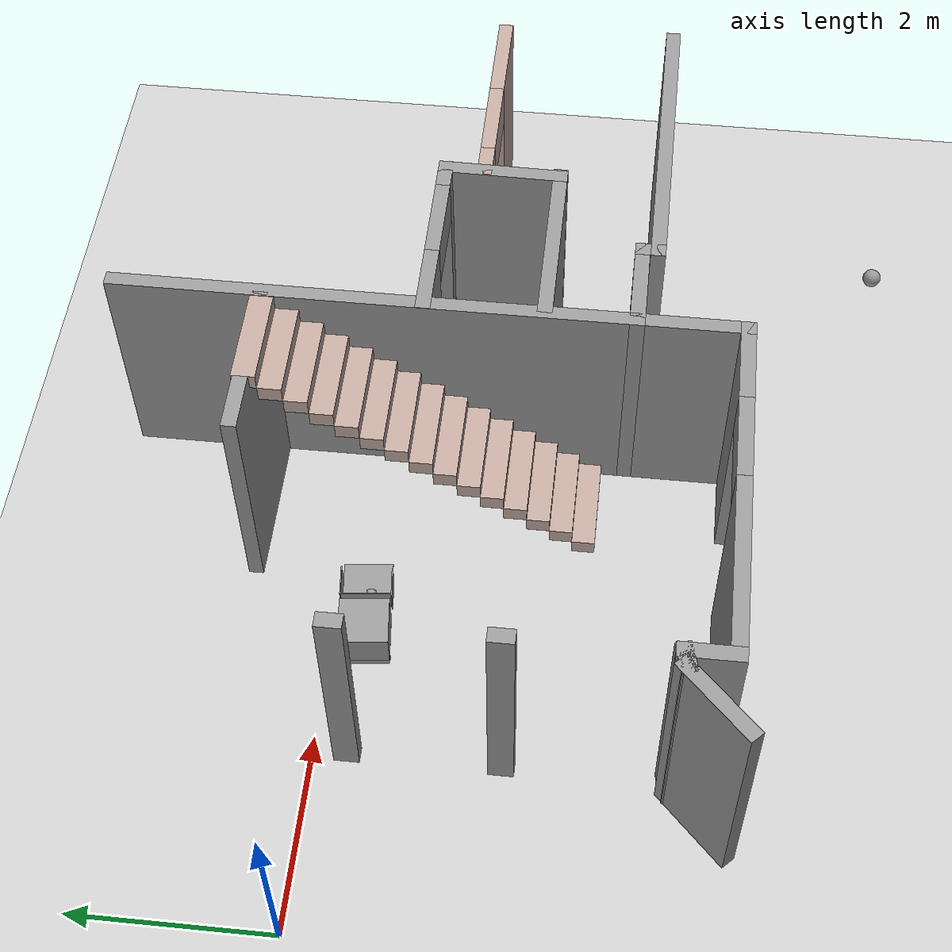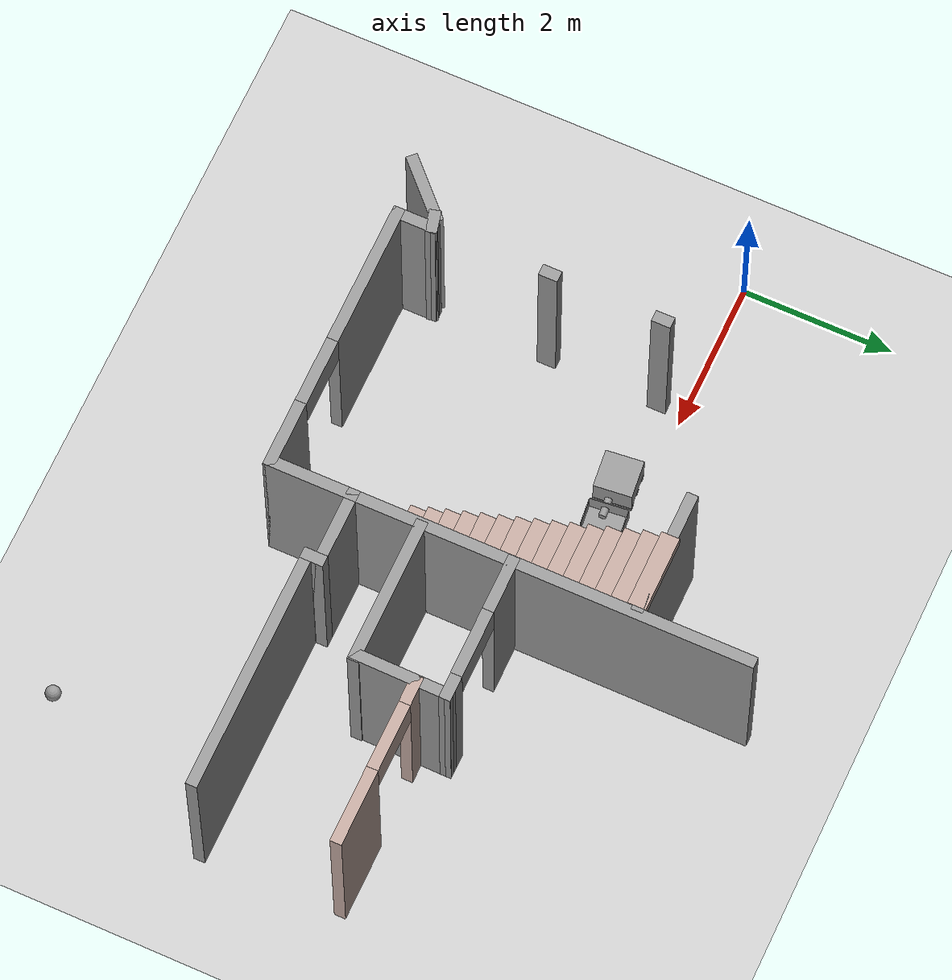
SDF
<sdf version="1.6">
 <world name="default">
  <model name="ground_plane">
   <static>1</static>
   <link name="link">
    <collision name="collision">
     <geometry><plane><normal>0 0 1</normal><size>100 100</size></plane></geometry>
     <surface><friction><ode><mu>100</mu><mu2>50</mu2></ode></friction></surface>
    </collision>
    <visual name="visual">
     <cast_shadows>0</cast_shadows>
     <geometry><plane><normal>0 0 1</normal><size>100 100</size></plane></geometry>
     <material>
      <script><uri>file://media/materials/scripts/gazebo.material</uri><name>Gazebo/Grey</name></script>
     </material>
    </visual>
   </link>
  </model>
  <model name="MDP-Home">
   <pose>0.766606 1.22436 0 0 -0 0</pose>
   <link name="Stairs_1">
    <visual name="Stairs_1_Visual_0">
     <pose>4.13477 -3.63656 0.083333 0 -0 -3.14159</pose>
     <geometry><box><size>1 0.235267 0.166667</size></box></geometry>
     <material>
      <script><uri>file://media/materials/scripts/gazebo.material</uri><name>Gazebo/Grey</name></script>
      <ambient>0.760784 0.662745 0.627451 1</ambient>
     </material>
     <meta><layer>0</layer></meta>
    </visual>
    <collision name="Stairs_1_Collision_0">
     <geometry><box><size>1 0.235267 0.166667</size></box></geometry>
     <pose>4.13477 -3.63656 0.083333 0 -0 -3.14159</pose>
    </collision>
    <visual name="Stairs_1_Visual_1">
     <pose>4.13477 -3.4013 0.25 0 -0 -3.14159</pose>
     <geometry><box><size>1 0.235267 0.166667</size></box></geometry>
     <material>
      <script><uri>file://media/materials/scripts/gazebo.material</uri><name>Gazebo/Grey</name></script>
      <ambient>0.760784 0.662745 0.627451 1</ambient>
     </material>
     <meta><layer>0</layer></meta>
    </visual>
    <collision name="Stairs_1_Collision_1">
     <geometry><box><size>1 0.235267 0.166667</size></box></geometry>
     <pose>4.13477 -3.4013 0.25 0 -0 -3.14159</pose>
    </collision>
    <visual name="Stairs_1_Visual_2">
     <pose>4.13477 -3.16603 0.416667 0 -0 -3.14159</pose>
     <geometry><box><size>1 0.235267 0.166667</size></box></geometry>
     <material>
      <script><uri>file://media/materials/scripts/gazebo.material</uri><name>Gazebo/Grey</name></script>
      <ambient>0.760784 0.662745 0.627451 1</ambient>
     </material>
     <meta><layer>0</layer></meta>
    </visual>
    <collision name="Stairs_1_Collision_2">
     <geometry><box><size>1 0.235267 0.166667</size></box></geometry>
     <pose>4.13477 -3.16603 0.416667 0 -0 -3.14159</pose>
    </collision>
    <visual name="Stairs_1_Visual_3">
     <pose>4.13477 -2.93076 0.583333 0 -0 -3.14159</pose>
     <geometry><box><size>1 0.235267 0.166667</size></box></geometry>
     <material>
      <script><uri>file://media/materials/scripts/gazebo.material</uri><name>Gazebo/Grey</name></script>
      <ambient>0.760784 0.662745 0.627451 1</ambient>
     </material>
     <meta><layer>0</layer></meta>
    </visual>
    <collision name="Stairs_1_Collision_3">
     <geometry><box><size>1 0.235267 0.166667</size></box></geometry>
     <pose>4.13477 -2.93076 0.583333 0 -0 -3.14159</pose>
    </collision>
    <visual name="Stairs_1_Visual_4">
     <pose>4.13477 -2.6955 0.75 0 -0 -3.14159</pose>
     <geometry><box><size>1 0.235267 0.166667</size></box></geometry>
     <material>
      <script><uri>file://media/materials/scripts/gazebo.material</uri><name>Gazebo/Grey</name></script>
      <ambient>0.760784 0.662745 0.627451 1</ambient>
     </material>
     <meta><layer>0</layer></meta>
    </visual>
    <collision name="Stairs_1_Collision_4">
     <geometry><box><size>1 0.235267 0.166667</size></box></geometry>
     <pose>4.13477 -2.6955 0.75 0 -0 -3.14159</pose>
    </collision>
    <visual name="Stairs_1_Visual_5">
     <pose>4.13477 -2.46023 0.916667 0 -0 -3.14159</pose>
     <geometry><box><size>1 0.235267 0.166667</size></box></geometry>
     <material>
      <script><uri>file://media/materials/scripts/gazebo.material</uri><name>Gazebo/Grey</name></script>
      <ambient>0.760784 0.662745 0.627451 1</ambient>
     </material>
     <meta><layer>0</layer></meta>
    </visual>
    <collision name="Stairs_1_Collision_5">
     <geometry><box><size>1 0.235267 0.166667</size></box></geometry>
     <pose>4.13477 -2.46023 0.916667 0 -0 -3.14159</pose>
    </collision>
    <visual name="Stairs_1_Visual_6">
     <pose>4.13477 -2.22496 1.08333 0 -0 -3.14159</pose>
     <geometry><box><size>1 0.235267 0.166667</size></box></geometry>
     <material>
      <script><uri>file://media/materials/scripts/gazebo.material</uri><name>Gazebo/Grey</name></script>
      <ambient>0.760784 0.662745 0.627451 1</ambient>
     </material>
     <meta><layer>0</layer></meta>
    </visual>
    <collision name="Stairs_1_Collision_6">
     <geometry><box><size>1 0.235267 0.166667</size></box></geometry>
     <pose>4.13477 -2.22496 1.08333 0 -0 -3.14159</pose>
    </collision>
    <visual name="Stairs_1_Visual_7">
     <pose>4.13477 -1.9897 1.25 0 -0 -3.14159</pose>
     <geometry><box><size>1 0.235267 0.166667</size></box></geometry>
     <material>
      <script><uri>file://media/materials/scripts/gazebo.material</uri><name>Gazebo/Grey</name></script>
      <ambient>0.760784 0.662745 0.627451 1</ambient>
     </material>
     <meta><layer>0</layer></meta>
    </visual>
    <collision name="Stairs_1_Collision_7">
     <geometry><box><size>1 0.235267 0.166667</size></box></geometry>
     <pose>4.13477 -1.9897 1.25 0 -0 -3.14159</pose>
    </collision>
    <visual name="Stairs_1_Visual_8">
     <pose>4.13477 -1.75443 1.41667 0 -0 -3.14159</pose>
     <geometry><box><size>1 0.235267 0.166667</size></box></geometry>
     <material>
      <script><uri>file://media/materials/scripts/gazebo.material</uri><name>Gazebo/Grey</name></script>
      <ambient>0.760784 0.662745 0.627451 1</ambient>
     </material>
     <meta><layer>0</layer></meta>
    </visual>
    <collision name="Stairs_1_Collision_8">
     <geometry><box><size>1 0.235267 0.166667</size></box></geometry>
     <pose>4.13477 -1.75443 1.41667 0 -0 -3.14159</pose>
    </collision>
    <visual name="Stairs_1_Visual_9">
     <pose>4.13477 -1.51916 1.58333 0 -0 -3.14159</pose>
     <geometry><box><size>1 0.235267 0.166667</size></box></geometry>
     <material>
      <script><uri>file://media/materials/scripts/gazebo.material</uri><name>Gazebo/Grey</name></script>
      <ambient>0.760784 0.662745 0.627451 1</ambient>
     </material>
     <meta><layer>0</layer></meta>
    </visual>
    <collision name="Stairs_1_Collision_9">
     <geometry><box><size>1 0.235267 0.166667</size></box></geometry>
     <pose>4.13477 -1.51916 1.58333 0 -0 -3.14159</pose>
    </collision>
    <visual name="Stairs_1_Visual_10">
     <pose>4.13477 -1.2839 1.75 0 -0 -3.14159</pose>
     <geometry><box><size>1 0.235267 0.166667</size></box></geometry>
     <material>
      <script><uri>file://media/materials/scripts/gazebo.material</uri><name>Gazebo/Grey</name></script>
      <ambient>0.760784 0.662745 0.627451 1</ambient>
     </material>
     <meta><layer>0</layer></meta>
    </visual>
    <collision name="Stairs_1_Collision_10">
     <geometry><box><size>1 0.235267 0.166667</size></box></geometry>
     <pose>4.13477 -1.2839 1.75 0 -0 -3.14159</pose>
    </collision>
    <visual name="Stairs_1_Visual_11">
     <pose>4.13477 -1.04863 1.91667 0 -0 -3.14159</pose>
     <geometry><box><size>1 0.235267 0.166667</size></box></geometry>
     <material>
      <script><uri>file://media/materials/scripts/gazebo.material</uri><name>Gazebo/Grey</name></script>
      <ambient>0.760784 0.662745 0.627451 1</ambient>
     </material>
     <meta><layer>0</layer></meta>
    </visual>
    <collision name="Stairs_1_Collision_11">
     <geometry><box><size>1 0.235267 0.166667</size></box></geometry>
     <pose>4.13477 -1.04863 1.91667 0 -0 -3.14159</pose>
    </collision>
    <visual name="Stairs_1_Visual_12">
     <pose>4.13477 -0.813364 2.08333 0 -0 -3.14159</pose>
     <geometry><box><size>1 0.235267 0.166667</size></box></geometry>
     <material>
      <script><uri>file://media/materials/scripts/gazebo.material</uri><name>Gazebo/Grey</name></script>
      <ambient>0.760784 0.662745 0.627451 1</ambient>
     </material>
     <meta><layer>0</layer></meta>
    </visual>
    <collision name="Stairs_1_Collision_12">
     <geometry><box><size>1 0.235267 0.166667</size></box></geometry>
     <pose>4.13477 -0.813364 2.08333 0 -0 -3.14159</pose>
    </collision>
    <visual name="Stairs_1_Visual_13">
     <pose>4.13477 -0.578097 2.25 0 -0 -3.14159</pose>
     <geometry><box><size>1 0.235267 0.166667</size></box></geometry>
     <material>
      <script><uri>file://media/materials/scripts/gazebo.material</uri><name>Gazebo/Grey</name></script>
      <ambient>0.760784 0.662745 0.627451 1</ambient>
     </material>
     <meta><layer>0</layer></meta>
    </visual>
    <collision name="Stairs_1_Collision_13">
     <geometry><box><size>1 0.235267 0.166667</size></box></geometry>
     <pose>4.13477 -0.578097 2.25 0 -0 -3.14159</pose>
    </collision>
    <visual name="Stairs_1_Visual_14">
     <pose>4.13477 -0.342831 2.41667 0 -0 -3.14159</pose>
     <geometry><box><size>1 0.235267 0.166667</size></box></geometry>
     <material>
      <script><uri>file://media/materials/scripts/gazebo.material</uri><name>Gazebo/Grey</name></script>
      <ambient>0.760784 0.662745 0.627451 1</ambient>
     </material>
     <meta><layer>0</layer></meta>
    </visual>
    <collision name="Stairs_1_Collision_14">
     <geometry><box><size>1 0.235267 0.166667</size></box></geometry>
     <pose>4.13477 -0.342831 2.41667 0 -0 -3.14159</pose>
    </collision>
   </link>
   <link name="Wall_109">
    <collision name="Wall_109_Collision">
     <geometry><box><size>5.3 0.15 2.5</size></box></geometry>
     <pose>0 0 1.25 0 -0 0</pose>
    </collision>
    <visual name="Wall_109_Visual">
     <pose>0 0 1.25 0 -0 0</pose>
     <geometry><box><size>5.3 0.15 2.5</size></box></geometry>
     <material>
      <script><uri>file://media/materials/scripts/gazebo.material</uri><name>Gazebo/Grey</name></script>
      <ambient>1 1 1 1</ambient>
     </material>
     <meta><layer>0</layer></meta>
    </visual>
    <pose>4.71555 -1.42344 0 0 -0 1.5708</pose>
   </link>
   <link name="Wall_111">
    <collision name="Wall_111_Collision">
     <geometry><box><size>1.96718 0.15 2.5</size></box></geometry>
     <pose>0 0 1.25 0 -0 0</pose>
    </collision>
    <visual name="Wall_111_Visual">
     <pose>0 0 1.25 0 -0 0</pose>
     <geometry><box><size>1.96718 0.15 2.5</size></box></geometry>
     <material>
      <script><uri>file://media/materials/scripts/gazebo.material</uri><name>Gazebo/Grey</name></script>
      <ambient>1 1 1 1</ambient>
     </material>
     <meta><layer>0</layer></meta>
    </visual>
    <pose>5.66115 -3.09931 0 0 -0 0</pose>
   </link>
   <link name="Wall_112">
    <collision name="Wall_112_Collision">
     <geometry><box><size>1.33381 0.15 2.5</size></box></geometry>
     <pose>0 0 1.25 0 -0 0</pose>
    </collision>
    <visual name="Wall_112_Visual">
     <pose>0 0 1.25 0 -0 0</pose>
     <geometry><box><size>1.33381 0.15 2.5</size></box></geometry>
     <material>
      <script><uri>file://media/materials/scripts/gazebo.material</uri><name>Gazebo/Grey</name></script>
      <ambient>1 1 1 1</ambient>
     </material>
     <meta><layer>0</layer></meta>
    </visual>
    <pose>6.56113 -2.50746 0 0 -0 1.55716</pose>
   </link>
   <link name="Wall_113">
    <pose>5.64419 -1.91561 0 0 -0 3.14159</pose>
    <visual name="Wall_113_Visual_0">
     <pose>-0.830337 0 1.25 0 -0 0</pose>
     <geometry><box><size>0.339326 0.15 2.5</size></box></geometry>
     <material>
      <script><uri>file://media/materials/scripts/gazebo.material</uri><name>Gazebo/Grey</name></script>
      <ambient>1 1 1 1</ambient>
     </material>
     <meta><layer>0</layer></meta>
    </visual>
    <collision name="Wall_113_Collision_0">
     <geometry><box><size>0.339326 0.15 2.5</size></box></geometry>
     <pose>-0.830337 0 1.25 0 -0 0</pose>
    </collision>
    <visual name="Wall_113_Visual_1">
     <pose>0.619663 0 1.25 0 -0 0</pose>
     <geometry><box><size>0.760674 0.15 2.5</size></box></geometry>
     <material>
      <script><uri>file://media/materials/scripts/gazebo.material</uri><name>Gazebo/Grey</name></script>
      <ambient>1 1 1 1</ambient>
     </material>
     <meta><layer>0</layer></meta>
    </visual>
    <collision name="Wall_113_Collision_1">
     <geometry><box><size>0.760674 0.15 2.5</size></box></geometry>
     <pose>0.619663 0 1.25 0 -0 0</pose>
    </collision>
    <visual name="Wall_113_Visual_2">
     <pose>-0.210674 0 2.25 0 -0 0</pose>
     <geometry><box><size>0.9 0.15 0.5</size></box></geometry>
     <material>
      <script><uri>file://media/materials/scripts/gazebo.material</uri><name>Gazebo/Grey</name></script>
      <ambient>1 1 1 1</ambient>
     </material>
     <meta><layer>0</layer></meta>
    </visual>
    <collision name="Wall_113_Collision_2">
     <geometry><box><size>0.9 0.15 0.5</size></box></geometry>
     <pose>-0.210674 0 2.25 0 -0 0</pose>
    </collision>
   </link>
   <link name="Wall_120">
    <pose>7.65135 -2.31717 0 0 -0 0</pose>
    <visual name="Wall_120_Visual_0">
     <pose>-0.959065 0 1.25 0 -0 0</pose>
     <geometry><box><size>0.38187 0.15 2.5</size></box></geometry>
     <material>
      <script><uri>file://media/materials/scripts/gazebo.material</uri><name>Gazebo/Grey</name></script>
      <ambient>0.760784 0.662745 0.627451 1</ambient>
     </material>
     <meta><layer>0</layer></meta>
    </visual>
    <collision name="Wall_120_Collision_0">
     <geometry><box><size>0.38187 0.15 2.5</size></box></geometry>
     <pose>-0.959065 0 1.25 0 -0 0</pose>
    </collision>
    <visual name="Wall_120_Visual_1">
     <pose>0.640935 0 1.25 0 -0 0</pose>
     <geometry><box><size>1.01813 0.15 2.5</size></box></geometry>
     <material>
      <script><uri>file://media/materials/scripts/gazebo.material</uri><name>Gazebo/Grey</name></script>
      <ambient>0.760784 0.662745 0.627451 1</ambient>
     </material>
     <meta><layer>0</layer></meta>
    </visual>
    <collision name="Wall_120_Collision_1">
     <geometry><box><size>1.01813 0.15 2.5</size></box></geometry>
     <pose>0.640935 0 1.25 0 -0 0</pose>
    </collision>
    <visual name="Wall_120_Visual_2">
     <pose>-0.31813 0 2.25 0 -0 0</pose>
     <geometry><box><size>0.9 0.15 0.5</size></box></geometry>
     <material>
      <script><uri>file://media/materials/scripts/gazebo.material</uri><name>Gazebo/Grey</name></script>
      <ambient>0.760784 0.662745 0.627451 1</ambient>
     </material>
     <meta><layer>0</layer></meta>
    </visual>
    <collision name="Wall_120_Collision_2">
     <geometry><box><size>0.9 0.15 0.5</size></box></geometry>
     <pose>-0.31813 0 2.25 0 -0 0</pose>
    </collision>
   </link>
   <link name="Wall_123">
    <collision name="Wall_123_Collision">
     <geometry><box><size>1.65 0.15 2.5</size></box></geometry>
     <pose>0 0 1.25 0 -0 0</pose>
    </collision>
    <visual name="Wall_123_Visual">
     <pose>0 0 1.25 0 -0 0</pose>
     <geometry><box><size>1.65 0.15 2.5</size></box></geometry>
     <material>
      <script><uri>file://media/materials/scripts/gazebo.material</uri><name>Gazebo/Grey</name></script>
      <ambient>1 1 1 1</ambient>
     </material>
     <meta><layer>0</layer></meta>
    </visual>
    <pose>3.86539 -0.319363 0 0 -0 0</pose>
   </link>
   <link name="Wall_125">
    <collision name="Wall_125_Collision">
     <geometry><box><size>0.25 0.15 2.5</size></box></geometry>
     <pose>0 0 1.25 0 -0 0</pose>
    </collision>
    <visual name="Wall_125_Visual">
     <pose>0 0 1.25 0 -0 0</pose>
     <geometry><box><size>0.25 0.15 2.5</size></box></geometry>
     <material>
      <script><uri>file://media/materials/scripts/gazebo.material</uri><name>Gazebo/Grey</name></script>
      <ambient>1 1 1 1</ambient>
     </material>
     <meta><layer>0</layer></meta>
    </visual>
    <pose>1.08912 -3.0518 0 0 -0 1.5708</pose>
   </link>
   <link name="Wall_127">
    <collision name="Wall_127_Collision">
     <geometry><box><size>0.25 0.15 2.5</size></box></geometry>
     <pose>0 0 1.25 0 -0 0</pose>
    </collision>
    <visual name="Wall_127_Visual">
     <pose>0 0 1.25 0 -0 0</pose>
     <geometry><box><size>0.25 0.15 2.5</size></box></geometry>
     <material>
      <script><uri>file://media/materials/scripts/gazebo.material</uri><name>Gazebo/Grey</name></script>
      <ambient>1 1 1 1</ambient>
     </material>
     <meta><layer>0</layer></meta>
    </visual>
    <pose>1.08912 -1.56596 0 0 -0 1.5708</pose>
   </link>
   <link name="Wall_41">
    <collision name="Wall_41_Collision">
     <geometry><box><size>3.292 0.15 2.5</size></box></geometry>
     <pose>0 0 1.25 0 -0 0</pose>
    </collision>
    <visual name="Wall_41_Visual">
     <pose>0 0 1.25 0 -0 0</pose>
     <geometry><box><size>3.292 0.15 2.5</size></box></geometry>
     <material>
      <script><uri>file://media/materials/scripts/gazebo.material</uri><name>Gazebo/Grey</name></script>
      <ambient>1 1 1 1</ambient>
     </material>
     <meta><layer>0</layer></meta>
    </visual>
    <pose>7.20355 -4.15344 0 0 -0 3.14159</pose>
   </link>
   <link name="Wall_43">
    <collision name="Wall_43_Collision">
     <geometry><box><size>0.305 0.15 2.5</size></box></geometry>
     <pose>0 0 1.25 0 -0 0</pose>
    </collision>
    <visual name="Wall_43_Visual">
     <pose>0 0 1.25 0 -0 0</pose>
     <geometry><box><size>0.305 0.15 2.5</size></box></geometry>
     <material>
      <script><uri>file://media/materials/scripts/gazebo.material</uri><name>Gazebo/Grey</name></script>
      <ambient>1 1 1 1</ambient>
     </material>
     <meta><layer>0</layer></meta>
    </visual>
    <pose>5.63255 -4.07594 0 0 -0 1.5708</pose>
   </link>
   <link name="Wall_46">
    <collision name="Wall_46_Collision">
     <geometry><box><size>1.067 0.15 2.5</size></box></geometry>
     <pose>0 0 1.25 0 -0 0</pose>
    </collision>
    <visual name="Wall_46_Visual">
     <pose>0 0 1.25 0 -0 0</pose>
     <geometry><box><size>1.067 0.15 2.5</size></box></geometry>
     <material>
      <script><uri>file://media/materials/scripts/gazebo.material</uri><name>Gazebo/Grey</name></script>
      <ambient>1 1 1 1</ambient>
     </material>
     <meta><layer>0</layer></meta>
    </visual>
    <pose>5.17405 -3.99844 0 0 -0 3.14159</pose>
   </link>
   <link name="Wall_48">
    <collision name="Wall_48_Collision">
     <geometry><box><size>1.219 0.15 2.5</size></box></geometry>
     <pose>0 0 1.25 0 -0 0</pose>
    </collision>
    <visual name="Wall_48_Visual">
     <pose>0 0 1.25 0 -0 0</pose>
     <geometry><box><size>1.219 0.15 2.5</size></box></geometry>
     <material>
      <script><uri>file://media/materials/scripts/gazebo.material</uri><name>Gazebo/Grey</name></script>
      <ambient>1 1 1 1</ambient>
     </material>
     <meta><layer>0</layer></meta>
    </visual>
    <pose>4.71555 -4.53294 0 0 0 -1.5708</pose>
   </link>
   <link name="Wall_50">
    <pose>2.91605 -5.06744 0 0 -0 3.14159</pose>
    <visual name="Wall_50_Visual_0">
     <pose>-1.41623 0 1.25 0 -0 0</pose>
     <geometry><box><size>0.916536 0.15 2.5</size></box></geometry>
     <material>
      <script><uri>file://media/materials/scripts/gazebo.material</uri><name>Gazebo/Grey</name></script>
      <ambient>1 1 1 1</ambient>
     </material>
     <meta><layer>0</layer></meta>
    </visual>
    <collision name="Wall_50_Collision_0">
     <geometry><box><size>0.916536 0.15 2.5</size></box></geometry>
     <pose>-1.41623 0 1.25 0 -0 0</pose>
    </collision>
    <visual name="Wall_50_Visual_1">
     <pose>0.908268 0 1.25 0 -0 0</pose>
     <geometry><box><size>1.93246 0.15 2.5</size></box></geometry>
     <material>
      <script><uri>file://media/materials/scripts/gazebo.material</uri><name>Gazebo/Grey</name></script>
      <ambient>1 1 1 1</ambient>
     </material>
     <meta><layer>0</layer></meta>
    </visual>
    <collision name="Wall_50_Collision_1">
     <geometry><box><size>1.93246 0.15 2.5</size></box></geometry>
     <pose>0.908268 0 1.25 0 -0 0</pose>
    </collision>
    <visual name="Wall_50_Visual_2">
     <pose>-0.507964 0 2.25 0 -0 0</pose>
     <geometry><box><size>0.9 0.15 0.5</size></box></geometry>
     <material>
      <script><uri>file://media/materials/scripts/gazebo.material</uri><name>Gazebo/Grey</name></script>
      <ambient>1 1 1 1</ambient>
     </material>
     <meta><layer>0</layer></meta>
    </visual>
    <collision name="Wall_50_Collision_2">
     <geometry><box><size>0.9 0.15 0.5</size></box></geometry>
     <pose>-0.507964 0 2.25 0 -0 0</pose>
    </collision>
   </link>
   <link name="Wall_67">
    <collision name="Wall_67_Collision">
     <geometry><box><size>0.61 0.15 2.5</size></box></geometry>
     <pose>0 0 1.25 0 -0 0</pose>
    </collision>
    <visual name="Wall_67_Visual">
     <pose>0 0 1.25 0 -0 0</pose>
     <geometry><box><size>0.61 0.15 2.5</size></box></geometry>
     <material>
      <script><uri>file://media/materials/scripts/gazebo.material</uri><name>Gazebo/Grey</name></script>
      <ambient>1 1 1 1</ambient>
     </material>
     <meta><layer>0</layer></meta>
    </visual>
    <pose>1.11655 -4.83744 0 0 -0 1.5708</pose>
   </link>
   <link name="Wall_69">
    <collision name="Wall_69_Collision">
     <geometry><box><size>0.304601 0.15 2.5</size></box></geometry>
     <pose>0 0 1.25 0 -0 0</pose>
    </collision>
    <visual name="Wall_69_Visual">
     <pose>0 0 1.25 0 -0 0</pose>
     <geometry><box><size>0.304601 0.15 2.5</size></box></geometry>
     <material>
      <script><uri>file://media/materials/scripts/gazebo.material</uri><name>Gazebo/Grey</name></script>
      <ambient>1 1 1 1</ambient>
     </material>
     <meta><layer>0</layer></meta>
    </visual>
    <pose>1.04152 -4.62604 0 0 0 -2.89852</pose>
   </link>
   <link name="Wall_80">
    <collision name="Wall_80_Collision">
     <geometry><box><size>0.947048 0.15 2.5</size></box></geometry>
     <pose>0 0 1.25 0 -0 0</pose>
    </collision>
    <visual name="Wall_80_Visual">
     <pose>0 0 1.25 0 -0 0</pose>
     <geometry><box><size>0.947048 0.15 2.5</size></box></geometry>
     <material>
      <script><uri>file://media/materials/scripts/gazebo.material</uri><name>Gazebo/Grey</name></script>
      <ambient>1 1 1 1</ambient>
     </material>
     <meta><layer>0</layer></meta>
    </visual>
    <pose>0.681588 -4.9047 0 0 -0 0.774307</pose>
   </link>
   <static>1</static>
  </model>
  <model name="Lifter">
   <link name="link_0">
    <pose>-0.270445 0.004778 0.040055 0 -0 0</pose>
    <inertial>
     <mass>1</mass>
     <inertia>
      <ixx>0.166667</ixx>
      <ixy>0</ixy>
      <ixz>0</ixz>
      <iyy>0.166667</iyy>
      <iyz>0</iyz>
      <izz>0.166667</izz>
     </inertia>
    </inertial>
    <visual name="visual">
     <pose>0 0 0.1 0 -0 0</pose>
     <geometry><box><size>0.5 0.5 0.35</size></box></geometry>
     <material>
      <lighting>1</lighting>
      <script><uri>file://media/materials/scripts/gazebo.material</uri><name>Gazebo/Grey</name></script>
      <shader type="pixel"><normal_map>__default__</normal_map></shader>
      <ambient>0.3 0.3 0.3 1</ambient>
      <diffuse>0.7 0.7 0.7 1</diffuse>
      <specular>0.01 0.01 0.01 1</specular>
      <emissive>0 0 0 1</emissive>
     </material>
    </visual>
    <collision name="collision">
     <geometry><box><size>0.5 0.5 0.35</size></box></geometry>
     <surface>
      <friction>
       <ode><mu>1</mu><mu2>1</mu2><fdir1>0 0 0</fdir1><slip1>0</slip1><slip2>0</slip2></ode>
       <torsional>
        <coefficient>1</coefficient>
        <patch_radius>0</patch_radius>
        <surface_radius>0</surface_radius>
        <use_patch_radius>1</use_patch_radius>
        <ode><slip>0</slip></ode>
       </torsional>
      </friction>
      <bounce><restitution_coefficient>0</restitution_coefficient><threshold>1e+06</threshold></bounce>
      <contact>
       <collide_without_contact>0</collide_without_contact>
       <collide_without_contact_bitmask>1</collide_without_contact_bitmask>
       <collide_bitmask>1</collide_bitmask>
       <ode>
        <soft_cfm>0</soft_cfm>
        <soft_erp>0.2</soft_erp>
        <kp>1e+13</kp>
        <kd>1</kd>
        <max_vel>0.01</max_vel>
        <min_depth>0</min_depth>
       </ode>
       <bullet>
        <split_impulse>1</split_impulse>
        <split_impulse_penetration_threshold>-0.01</split_impulse_penetration_threshold>
        <soft_cfm>0</soft_cfm>
        <soft_erp>0.2</soft_erp>
        <kp>1e+13</kp>
        <kd>1</kd>
       </bullet>
      </contact>
     </surface>
    </collision>
   </link>
   <link name="link_1">
    <pose>-0.470445 0.004778 -0.084944 1.57079 -0 0</pose>
    <inertial>
     <mass>1</mass>
     <inertia><ixx>0.145833</ixx><ixy>0</ixy><ixz>0</ixz><iyy>0.145833</iyy><iyz>0</iyz><izz>0.125</izz></inertia>
    </inertial>
    <visual name="visual">
     <geometry><cylinder><radius>0.05</radius><length>0.5</length></cylinder></geometry>
     <material>
      <lighting>1</lighting>
      <script><uri>file://media/materials/scripts/gazebo.material</uri><name>Gazebo/Grey</name></script>
      <shader type="pixel"><normal_map>__default__</normal_map></shader>
      <ambient>0.3 0.3 0.3 1</ambient>
      <diffuse>0.7 0.7 0.7 1</diffuse>
      <specular>0.01 0.01 0.01 1</specular>
      <emissive>0 0 0 1</emissive>
     </material>
    </visual>
    <collision name="collision">
     <geometry><cylinder><radius>0.05</radius><length>0.5</length></cylinder></geometry>
     <surface>
      <friction>
       <ode><mu>1</mu><mu2>1</mu2><fdir1>0 0 0</fdir1><slip1>0</slip1><slip2>0</slip2></ode>
       <torsional>
        <coefficient>1</coefficient>
        <patch_radius>0</patch_radius>
        <surface_radius>0</surface_radius>
        <use_patch_radius>1</use_patch_radius>
        <ode><slip>0</slip></ode>
       </torsional>
      </friction>
      <bounce><restitution_coefficient>0</restitution_coefficient><threshold>1e+06</threshold></bounce>
      <contact>
       <collide_without_contact>0</collide_without_contact>
       <collide_without_contact_bitmask>1</collide_without_contact_bitmask>
       <collide_bitmask>1</collide_bitmask>
       <ode>
        <soft_cfm>0</soft_cfm>
        <soft_erp>0.2</soft_erp>
        <kp>1e+13</kp>
        <kd>1</kd>
        <max_vel>0.01</max_vel>
        <min_depth>0</min_depth>
       </ode>
       <bullet>
        <split_impulse>1</split_impulse>
        <split_impulse_penetration_threshold>-0.01</split_impulse_penetration_threshold>
        <soft_cfm>0</soft_cfm>
        <soft_erp>0.2</soft_erp>
        <kp>1e+13</kp>
        <kd>1</kd>
       </bullet>
      </contact>
     </surface>
    </collision>
   </link>
   <link name="link_1_clone">
    <pose>-0.270445 0.004778 -0.084944 1.57079 -0 0</pose>
    <inertial>
     <mass>1</mass>
     <inertia><ixx>0.145833</ixx><ixy>0</ixy><ixz>0</ixz><iyy>0.145833</iyy><iyz>0</iyz><izz>0.125</izz></inertia>
    </inertial>
    <visual name="visual">
     <geometry><cylinder><radius>0.05</radius><length>0.5</length></cylinder></geometry>
     <material>
      <lighting>1</lighting>
      <script><uri>file://media/materials/scripts/gazebo.material</uri><name>Gazebo/Grey</name></script>
      <shader type="pixel"><normal_map>__default__</normal_map></shader>
      <ambient>0.3 0.3 0.3 1</ambient>
      <diffuse>0.7 0.7 0.7 1</diffuse>
      <specular>0.01 0.01 0.01 1</specular>
      <emissive>0 0 0 1</emissive>
     </material>
    </visual>
    <collision name="collision">
     <geometry><cylinder><radius>0.05</radius><length>0.5</length></cylinder></geometry>
     <surface>
      <friction>
       <ode><mu>1</mu><mu2>1</mu2><fdir1>0 0 0</fdir1><slip1>0</slip1><slip2>0</slip2></ode>
       <torsional>
        <coefficient>1</coefficient>
        <patch_radius>0</patch_radius>
        <surface_radius>0</surface_radius>
        <use_patch_radius>1</use_patch_radius>
        <ode><slip>0</slip></ode>
       </torsional>
      </friction>
      <bounce><restitution_coefficient>0</restitution_coefficient><threshold>1e+06</threshold></bounce>
      <contact>
       <collide_without_contact>0</collide_without_contact>
       <collide_without_contact_bitmask>1</collide_without_contact_bitmask>
       <collide_bitmask>1</collide_bitmask>
       <ode>
        <soft_cfm>0</soft_cfm>
        <soft_erp>0.2</soft_erp>
        <kp>1e+13</kp>
        <kd>1</kd>
        <max_vel>0.01</max_vel>
        <min_depth>0</min_depth>
       </ode>
       <bullet>
        <split_impulse>1</split_impulse>
        <split_impulse_penetration_threshold>-0.01</split_impulse_penetration_threshold>
        <soft_cfm>0</soft_cfm>
        <soft_erp>0.2</soft_erp>
        <kp>1e+13</kp>
        <kd>1</kd>
       </bullet>
      </contact>
     </surface>
    </collision>
   </link>
   <link name="link_1_clone_1">
    <pose>-0.070445 0.004778 -0.084944 1.57079 -0 0</pose>
    <inertial>
     <mass>1</mass>
     <inertia><ixx>0.145833</ixx><ixy>0</ixy><ixz>0</ixz><iyy>0.145833</iyy><iyz>0</iyz><izz>0.125</izz></inertia>
    </inertial>
    <visual name="visual">
     <geometry><cylinder><radius>0.05</radius><length>0.5</length></cylinder></geometry>
     <material>
      <lighting>1</lighting>
      <script><uri>file://media/materials/scripts/gazebo.material</uri><name>Gazebo/Grey</name></script>
      <shader type="pixel"><normal_map>__default__</normal_map></shader>
      <ambient>0.3 0.3 0.3 1</ambient>
      <diffuse>0.7 0.7 0.7 1</diffuse>
      <specular>0.01 0.01 0.01 1</specular>
      <emissive>0 0 0 1</emissive>
     </material>
    </visual>
    <collision name="collision">
     <geometry><cylinder><radius>0.05</radius><length>0.5</length></cylinder></geometry>
     <surface>
      <friction>
       <ode><mu>1</mu><mu2>1</mu2><fdir1>0 0 0</fdir1><slip1>0</slip1><slip2>0</slip2></ode>
       <torsional>
        <coefficient>1</coefficient>
        <patch_radius>0</patch_radius>
        <surface_radius>0</surface_radius>
        <use_patch_radius>1</use_patch_radius>
        <ode><slip>0</slip></ode>
       </torsional>
      </friction>
      <bounce><restitution_coefficient>0</restitution_coefficient><threshold>1e+06</threshold></bounce>
      <contact>
       <collide_without_contact>0</collide_without_contact>
       <collide_without_contact_bitmask>1</collide_without_contact_bitmask>
       <collide_bitmask>1</collide_bitmask>
       <ode>
        <soft_cfm>0</soft_cfm>
        <soft_erp>0.2</soft_erp>
        <kp>1e+13</kp>
        <kd>1</kd>
        <max_vel>0.01</max_vel>
        <min_depth>0</min_depth>
       </ode>
       <bullet>
        <split_impulse>1</split_impulse>
        <split_impulse_penetration_threshold>-0.01</split_impulse_penetration_threshold>
        <soft_cfm>0</soft_cfm>
        <soft_erp>0.2</soft_erp>
        <kp>1e+13</kp>
        <kd>1</kd>
       </bullet>
      </contact>
     </surface>
    </collision>
   </link>
   <link name="link_5">
    <pose>0.104558 0.004778 0.082555 0 -0 0</pose>
    <inertial>
     <mass>1</mass>
     <inertia>
      <ixx>0.166667</ixx>
      <ixy>0</ixy>
      <ixz>0</ixz>
      <iyy>0.166667</iyy>
      <iyz>0</iyz>
      <izz>0.166667</izz>
     </inertia>
    </inertial>
    <visual name="visual">
     <geometry><box><size>0.01 0.5 0.25</size></box></geometry>
     <material>
      <lighting>1</lighting>
      <script><uri>file://media/materials/scripts/gazebo.material</uri><name>Gazebo/Grey</name></script>
      <shader type="pixel"><normal_map>__default__</normal_map></shader>
      <ambient>0.3 0.3 0.3 1</ambient>
      <diffuse>0.7 0.7 0.7 1</diffuse>
      <specular>0.01 0.01 0.01 1</specular>
      <emissive>0 0 0 1</emissive>
     </material>
    </visual>
    <collision name="collision">
     <geometry><box><size>0.01 0.5 0.25</size></box></geometry>
     <surface>
      <friction>
       <ode><mu>1</mu><mu2>1</mu2><fdir1>0 0 0</fdir1><slip1>0</slip1><slip2>0</slip2></ode>
       <torsional>
        <coefficient>1</coefficient>
        <patch_radius>0</patch_radius>
        <surface_radius>0</surface_radius>
        <use_patch_radius>1</use_patch_radius>
        <ode><slip>0</slip></ode>
       </torsional>
      </friction>
      <bounce><restitution_coefficient>0</restitution_coefficient><threshold>1e+06</threshold></bounce>
      <contact>
       <collide_without_contact>0</collide_without_contact>
       <collide_without_contact_bitmask>1</collide_without_contact_bitmask>
       <collide_bitmask>1</collide_bitmask>
       <ode>
        <soft_cfm>0</soft_cfm>
        <soft_erp>0.2</soft_erp>
        <kp>1e+13</kp>
        <kd>1</kd>
        <max_vel>0.01</max_vel>
        <min_depth>0</min_depth>
       </ode>
       <bullet>
        <split_impulse>1</split_impulse>
        <split_impulse_penetration_threshold>-0.01</split_impulse_penetration_threshold>
        <soft_cfm>0</soft_cfm>
        <soft_erp>0.2</soft_erp>
        <kp>1e+13</kp>
        <kd>1</kd>
       </bullet>
      </contact>
     </surface>
    </collision>
   </link>
   <link name="link_6">
    <pose>0.347558 0.004778 -0.035445 0 -0 0</pose>
    <inertial>
     <mass>1</mass>
     <inertia>
      <ixx>0.166667</ixx>
      <ixy>0</ixy>
      <ixz>0</ixz>
      <iyy>0.166667</iyy>
      <iyz>0</iyz>
      <izz>0.166667</izz>
     </inertia>
    </inertial>
    <visual name="visual">
     <geometry><box><size>0.5 0.5 0.01</size></box></geometry>
     <material>
      <lighting>1</lighting>
      <script><uri>file://media/materials/scripts/gazebo.material</uri><name>Gazebo/Grey</name></script>
      <shader type="pixel"><normal_map>__default__</normal_map></shader>
      <ambient>0.3 0.3 0.3 1</ambient>
      <diffuse>0.7 0.7 0.7 1</diffuse>
      <specular>0.01 0.01 0.01 1</specular>
      <emissive>0 0 0 1</emissive>
     </material>
    </visual>
    <collision name="collision">
     <geometry><box><size>0.5 0.5 0.01</size></box></geometry>
     <surface>
      <friction>
       <ode><mu>1</mu><mu2>1</mu2><fdir1>0 0 0</fdir1><slip1>0</slip1><slip2>0</slip2></ode>
       <torsional>
        <coefficient>1</coefficient>
        <patch_radius>0</patch_radius>
        <surface_radius>0</surface_radius>
        <use_patch_radius>1</use_patch_radius>
        <ode><slip>0</slip></ode>
       </torsional>
      </friction>
      <bounce><restitution_coefficient>0</restitution_coefficient><threshold>1e+06</threshold></bounce>
      <contact>
       <collide_without_contact>0</collide_without_contact>
       <collide_without_contact_bitmask>1</collide_without_contact_bitmask>
       <collide_bitmask>1</collide_bitmask>
       <ode>
        <soft_cfm>0</soft_cfm>
        <soft_erp>0.2</soft_erp>
        <kp>1e+13</kp>
        <kd>1</kd>
        <max_vel>0.01</max_vel>
        <min_depth>0</min_depth>
       </ode>
       <bullet>
        <split_impulse>1</split_impulse>
        <split_impulse_penetration_threshold>-0.01</split_impulse_penetration_threshold>
        <soft_cfm>0</soft_cfm>
        <soft_erp>0.2</soft_erp>
        <kp>1e+13</kp>
        <kd>1</kd>
       </bullet>
      </contact>
     </surface>
    </collision>
   </link>
   <link name="link_7">
    <pose>0.262558 0.261778 0.082555 0 -0 0</pose>
    <inertial>
     <mass>1</mass>
     <inertia>
      <ixx>0.166667</ixx>
      <ixy>0</ixy>
      <ixz>0</ixz>
      <iyy>0.166667</iyy>
      <iyz>0</iyz>
      <izz>0.166667</izz>
     </inertia>
    </inertial>
    <visual name="visual">
     <geometry><box><size>0.33 0.01 0.25</size></box></geometry>
     <material>
      <lighting>1</lighting>
      <script><uri>file://media/materials/scripts/gazebo.material</uri><name>Gazebo/Grey</name></script>
      <shader type="pixel"><normal_map>__default__</normal_map></shader>
      <ambient>0.3 0.3 0.3 1</ambient>
      <diffuse>0.7 0.7 0.7 1</diffuse>
      <specular>0.01 0.01 0.01 1</specular>
      <emissive>0 0 0 1</emissive>
     </material>
    </visual>
    <collision name="collision">
     <geometry><box><size>0.33 0.01 0.25</size></box></geometry>
     <surface>
      <friction>
       <ode><mu>1</mu><mu2>1</mu2><fdir1>0 0 0</fdir1><slip1>0</slip1><slip2>0</slip2></ode>
       <torsional>
        <coefficient>1</coefficient>
        <patch_radius>0</patch_radius>
        <surface_radius>0</surface_radius>
        <use_patch_radius>1</use_patch_radius>
        <ode><slip>0</slip></ode>
       </torsional>
      </friction>
      <bounce><restitution_coefficient>0</restitution_coefficient><threshold>1e+06</threshold></bounce>
      <contact>
       <collide_without_contact>0</collide_without_contact>
       <collide_without_contact_bitmask>1</collide_without_contact_bitmask>
       <collide_bitmask>1</collide_bitmask>
       <ode>
        <soft_cfm>0</soft_cfm>
        <soft_erp>0.2</soft_erp>
        <kp>1e+13</kp>
        <kd>1</kd>
        <max_vel>0.01</max_vel>
        <min_depth>0</min_depth>
       </ode>
       <bullet>
        <split_impulse>1</split_impulse>
        <split_impulse_penetration_threshold>-0.01</split_impulse_penetration_threshold>
        <soft_cfm>0</soft_cfm>
        <soft_erp>0.2</soft_erp>
        <kp>1e+13</kp>
        <kd>1</kd>
       </bullet>
      </contact>
     </surface>
    </collision>
   </link>
   <link name="link_7_clone">
    <pose>0.262558 -0.250222 0.040055 0 -0 0</pose>
    <inertial>
     <mass>1</mass>
     <inertia>
      <ixx>0.166667</ixx>
      <ixy>0</ixy>
      <ixz>0</ixz>
      <iyy>0.166667</iyy>
      <iyz>0</iyz>
      <izz>0.166667</izz>
     </inertia>
    </inertial>
    <visual name="visual">
     <geometry><box><size>0.33 0.01 0.25</size></box></geometry>
     <material>
      <lighting>1</lighting>
      <script><uri>file://media/materials/scripts/gazebo.material</uri><name>Gazebo/Grey</name></script>
      <shader type="pixel"><normal_map>__default__</normal_map></shader>
      <ambient>0.3 0.3 0.3 1</ambient>
      <diffuse>0.7 0.7 0.7 1</diffuse>
      <specular>0.01 0.01 0.01 1</specular>
      <emissive>0 0 0 1</emissive>
     </material>
    </visual>
    <collision name="collision">
     <geometry><box><size>0.33 0.01 0.25</size></box></geometry>
     <surface>
      <friction>
       <ode><mu>1</mu><mu2>1</mu2><fdir1>0 0 0</fdir1><slip1>0</slip1><slip2>0</slip2></ode>
       <torsional>
        <coefficient>1</coefficient>
        <patch_radius>0</patch_radius>
        <surface_radius>0</surface_radius>
        <use_patch_radius>1</use_patch_radius>
        <ode><slip>0</slip></ode>
       </torsional>
      </friction>
      <bounce><restitution_coefficient>0</restitution_coefficient><threshold>1e+06</threshold></bounce>
      <contact>
       <collide_without_contact>0</collide_without_contact>
       <collide_without_contact_bitmask>1</collide_without_contact_bitmask>
       <collide_bitmask>1</collide_bitmask>
       <ode>
        <soft_cfm>0</soft_cfm>
        <soft_erp>0.2</soft_erp>
        <kp>1e+13</kp>
        <kd>1</kd>
        <max_vel>0.01</max_vel>
        <min_depth>0</min_depth>
       </ode>
       <bullet>
        <split_impulse>1</split_impulse>
        <split_impulse_penetration_threshold>-0.01</split_impulse_penetration_threshold>
        <soft_cfm>0</soft_cfm>
        <soft_erp>0.2</soft_erp>
        <kp>1e+13</kp>
        <kd>1</kd>
       </bullet>
      </contact>
     </surface>
    </collision>
   </link>
   <link name="link_8">
    <pose>0.104556 -0.040222 0.045055 1.57079 -0 1.57079</pose>
    <inertial>
     <mass>1</mass>
     <inertia><ixx>0.145833</ixx><ixy>0</ixy><ixz>0</ixz><iyy>0.145833</iyy><iyz>0</iyz><izz>0.125</izz></inertia>
    </inertial>
    <visual name="visual">
     <geometry><cylinder><radius>0.05</radius><length>0.25</length></cylinder></geometry>
     <material>
      <lighting>1</lighting>
      <script><uri>file://media/materials/scripts/gazebo.material</uri><name>Gazebo/Grey</name></script>
      <shader type="pixel"><normal_map>__default__</normal_map></shader>
      <ambient>0.3 0.3 0.3 1</ambient>
      <diffuse>0.7 0.7 0.7 1</diffuse>
      <specular>0.01 0.01 0.01 1</specular>
      <emissive>0 0 0 1</emissive>
     </material>
    </visual>
    <collision name="collision">
     <geometry><cylinder><radius>0.05</radius><length>0.25</length></cylinder></geometry>
     <surface>
      <friction>
       <ode><mu>1</mu><mu2>1</mu2><fdir1>0 0 0</fdir1><slip1>0</slip1><slip2>0</slip2></ode>
       <torsional>
        <coefficient>1</coefficient>
        <patch_radius>0</patch_radius>
        <surface_radius>0</surface_radius>
        <use_patch_radius>1</use_patch_radius>
        <ode><slip>0</slip></ode>
       </torsional>
      </friction>
      <bounce><restitution_coefficient>0</restitution_coefficient><threshold>1e+06</threshold></bounce>
      <contact>
       <collide_without_contact>0</collide_without_contact>
       <collide_without_contact_bitmask>1</collide_without_contact_bitmask>
       <collide_bitmask>1</collide_bitmask>
       <ode>
        <soft_cfm>0</soft_cfm>
        <soft_erp>0.2</soft_erp>
        <kp>1e+13</kp>
        <kd>1</kd>
        <max_vel>0.01</max_vel>
        <min_depth>0</min_depth>
       </ode>
       <bullet>
        <split_impulse>1</split_impulse>
        <split_impulse_penetration_threshold>-0.01</split_impulse_penetration_threshold>
        <soft_cfm>0</soft_cfm>
        <soft_erp>0.2</soft_erp>
        <kp>1e+13</kp>
        <kd>1</kd>
       </bullet>
      </contact>
     </surface>
    </collision>
   </link>
   <joint name="link_0_JOINT_0" type="revolute">
    <parent>link_0</parent>
    <child>link_1</child>
    <axis>
     <xyz>1 0 0</xyz>
     <use_parent_model_frame>0</use_parent_model_frame>
     <limit>
      <lower>-1.79769e+308</lower>
      <upper>1.79769e+308</upper>
      <effort>-1</effort>
      <velocity>-1</velocity>
     </limit>
     <dynamics>
      <spring_reference>0</spring_reference>
      <spring_stiffness>0</spring_stiffness>
      <damping>0</damping>
     </dynamics>
    </axis>
    <physics>
     <ode><limit><cfm>0</cfm><erp>0.2</erp></limit><suspension><cfm>0</cfm><erp>0.2</erp></suspension></ode>
    </physics>
   </joint>
   <joint name="link_0_JOINT_10" type="revolute">
    <parent>link_0</parent>
    <child>link_8</child>
    <axis>
     <xyz>1 0 0</xyz>
     <use_parent_model_frame>0</use_parent_model_frame>
     <limit>
      <lower>-1.79769e+308</lower>
      <upper>1.79769e+308</upper>
      <effort>-1</effort>
      <velocity>-1</velocity>
     </limit>
     <dynamics>
      <spring_reference>0</spring_reference>
      <spring_stiffness>0</spring_stiffness>
      <damping>0</damping>
     </dynamics>
    </axis>
    <physics>
     <ode><limit><cfm>0</cfm><erp>0.2</erp></limit><suspension><cfm>0</cfm><erp>0.2</erp></suspension></ode>
    </physics>
   </joint>
   <joint name="link_0_JOINT_2" type="revolute">
    <parent>link_0</parent>
    <child>link_1_clone</child>
    <axis>
     <xyz>1 0 0</xyz>
     <use_parent_model_frame>0</use_parent_model_frame>
     <limit>
      <lower>-1.79769e+308</lower>
      <upper>1.79769e+308</upper>
      <effort>-1</effort>
      <velocity>-1</velocity>
     </limit>
     <dynamics>
      <spring_reference>0</spring_reference>
      <spring_stiffness>0</spring_stiffness>
      <damping>0</damping>
     </dynamics>
    </axis>
    <physics>
     <ode><limit><cfm>0</cfm><erp>0.2</erp></limit><suspension><cfm>0</cfm><erp>0.2</erp></suspension></ode>
    </physics>
   </joint>
   <joint name="link_0_JOINT_3" type="revolute">
    <parent>link_0</parent>
    <child>link_1_clone_1</child>
    <axis>
     <xyz>1 0 0</xyz>
     <use_parent_model_frame>0</use_parent_model_frame>
     <limit>
      <lower>-1.79769e+308</lower>
      <upper>1.79769e+308</upper>
      <effort>-1</effort>
      <velocity>-1</velocity>
     </limit>
     <dynamics>
      <spring_reference>0</spring_reference>
      <spring_stiffness>0</spring_stiffness>
      <damping>0</damping>
     </dynamics>
    </axis>
    <physics>
     <ode><limit><cfm>0</cfm><erp>0.2</erp></limit><suspension><cfm>0</cfm><erp>0.2</erp></suspension></ode>
    </physics>
   </joint>
   <joint name="link_5_JOINT_13" type="revolute">
    <parent>link_5</parent>
    <child>link_6</child>
    <axis>
     <xyz>0 1 0</xyz>
     <use_parent_model_frame>0</use_parent_model_frame>
     <limit>
      <lower>-1.79769e+308</lower>
      <upper>1.79769e+308</upper>
      <effort>-1</effort>
      <velocity>-1</velocity>
     </limit>
     <dynamics>
      <spring_reference>0</spring_reference>
      <spring_stiffness>0</spring_stiffness>
      <damping>0</damping>
     </dynamics>
    </axis>
    <physics>
     <ode><limit><cfm>0</cfm><erp>0.2</erp></limit><suspension><cfm>0</cfm><erp>0.2</erp></suspension></ode>
    </physics>
   </joint>
   <joint name="link_5_JOINT_15" type="revolute">
    <parent>link_5</parent>
    <child>link_7</child>
    <axis>
     <xyz>1 0 0</xyz>
     <use_parent_model_frame>0</use_parent_model_frame>
     <limit>
      <lower>-1.79769e+308</lower>
      <upper>1.79769e+308</upper>
      <effort>-1</effort>
      <velocity>-1</velocity>
     </limit>
     <dynamics>
      <spring_reference>0</spring_reference>
      <spring_stiffness>0</spring_stiffness>
      <damping>0</damping>
     </dynamics>
    </axis>
    <physics>
     <ode><limit><cfm>0</cfm><erp>0.2</erp></limit><suspension><cfm>0</cfm><erp>0.2</erp></suspension></ode>
    </physics>
   </joint>
   <joint name="link_5_JOINT_16" type="revolute">
    <parent>link_5</parent>
    <child>link_7_clone</child>
    <axis>
     <xyz>0 1 0</xyz>
     <use_parent_model_frame>0</use_parent_model_frame>
     <limit>
      <lower>-1.79769e+308</lower>
      <upper>1.79769e+308</upper>
      <effort>-1</effort>
      <velocity>-1</velocity>
     </limit>
     <dynamics>
      <spring_reference>0</spring_reference>
      <spring_stiffness>0</spring_stiffness>
      <damping>0</damping>
     </dynamics>
    </axis>
    <physics>
     <ode><limit><cfm>0</cfm><erp>0.2</erp></limit><suspension><cfm>0</cfm><erp>0.2</erp></suspension></ode>
    </physics>
   </joint>
   <joint name="link_8_JOINT_12" type="revolute">
    <parent>link_8</parent>
    <child>link_5</child>
    <axis>
     <xyz>0 1 0</xyz>
     <use_parent_model_frame>0</use_parent_model_frame>
     <limit>
      <lower>-1.79769e+308</lower>
      <upper>1.79769e+308</upper>
      <effort>-1</effort>
      <velocity>-1</velocity>
     </limit>
     <dynamics>
      <spring_reference>0</spring_reference>
      <spring_stiffness>0</spring_stiffness>
      <damping>0</damping>
     </dynamics>
    </axis>
    <physics>
     <ode><limit><cfm>0</cfm><erp>0.2</erp></limit><suspension><cfm>0</cfm><erp>0.2</erp></suspension></ode>
    </physics>
   </joint>
   <static>0</static>
   <pose>3.35594 -0.314161 0.134946 -3e-06 7e-06 0.102898</pose>
  </model>
  <model name="my_ball">
   <link name="link_0">
    <inertial>
     <mass>1</mass>
     <inertia><ixx>0.1</ixx><ixy>0</ixy><ixz>0</ixz><iyy>0.1</iyy><iyz>0</iyz><izz>0.1</izz></inertia>
    </inertial>
    <visual name="visual">
     <geometry><sphere><radius>0.1</radius></sphere></geometry>
     <material>
      <lighting>1</lighting>
      <script><uri>file://media/materials/scripts/gazebo.material</uri><name>Gazebo/Grey</name></script>
      <shader type="pixel"><normal_map>__default__</normal_map></shader>
      <ambient>1 1 1 1</ambient>
      <diffuse>1 1 1 1</diffuse>
      <specular>1 1 1 1</specular>
      <emissive>1 1 1 1</emissive>
     </material>
    </visual>
    <collision name="collision">
     <geometry><sphere><radius>0.1</radius></sphere></geometry>
     <surface>
      <friction>
       <ode><mu>1</mu><mu2>1</mu2><fdir1>0 0 0</fdir1><slip1>0</slip1><slip2>0</slip2></ode>
       <torsional>
        <coefficient>1</coefficient>
        <patch_radius>0</patch_radius>
        <surface_radius>0</surface_radius>
        <use_patch_radius>1</use_patch_radius>
        <ode><slip>0</slip></ode>
       </torsional>
      </friction>
      <bounce><restitution_coefficient>0</restitution_coefficient><threshold>1e+06</threshold></bounce>
      <contact>
       <collide_without_contact>0</collide_without_contact>
       <collide_without_contact_bitmask>1</collide_without_contact_bitmask>
       <collide_bitmask>1</collide_bitmask>
       <ode>
        <soft_cfm>0</soft_cfm>
        <soft_erp>0.2</soft_erp>
        <kp>1e+13</kp>
        <kd>1</kd>
        <max_vel>0.01</max_vel>
        <min_depth>0</min_depth>
       </ode>
       <bullet>
        <split_impulse>1</split_impulse>
        <split_impulse_penetration_threshold>-0.01</split_impulse_penetration_threshold>
        <soft_cfm>0</soft_cfm>
        <soft_erp>0.2</soft_erp>
        <kp>1e+13</kp>
        <kd>1</kd>
       </bullet>
      </contact>
     </surface>
    </collision>
   </link>
   <static>0</static>
   <pose>8.42653 -5.44869 0.1 0 -0 0</pose>
  </model>
 </world>
</sdf>
